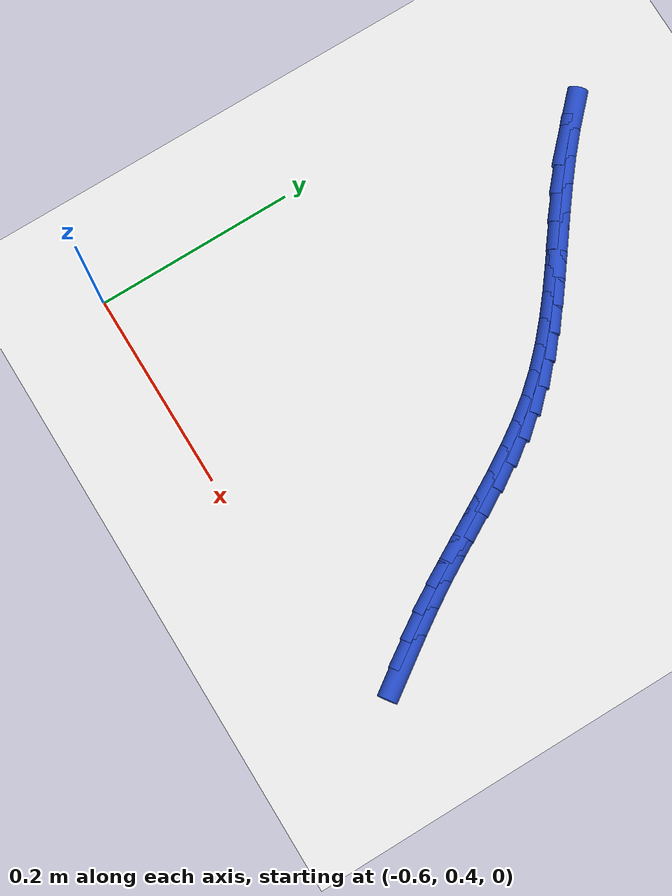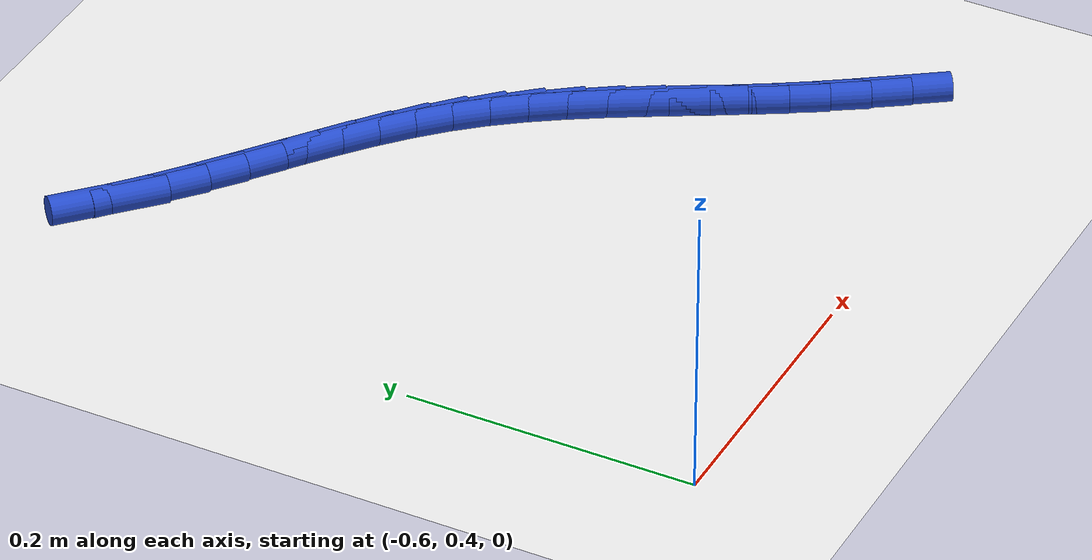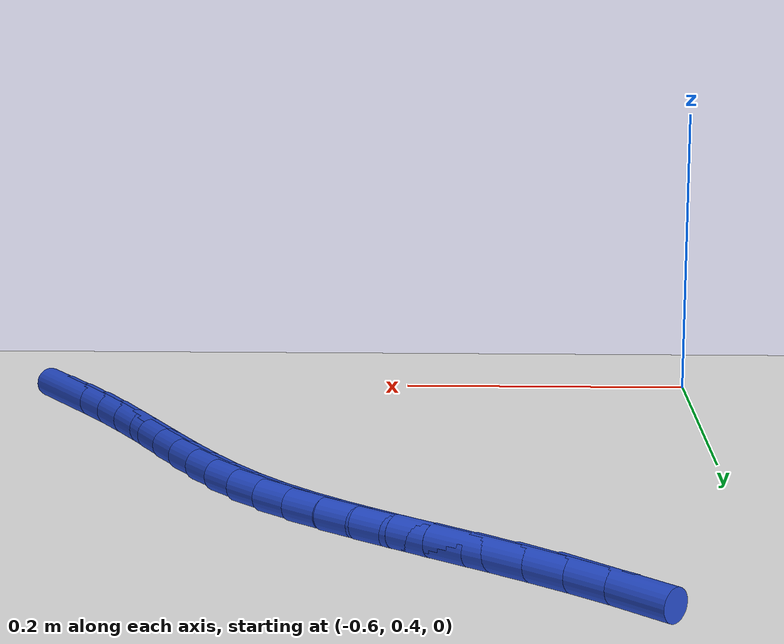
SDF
<sdf version="1.6">
 <world name="default">
  <model name="ground_plane">
   <static>1</static>
   <link name="link">
    <collision name="collision">
     <geometry><plane><normal>0 0 1</normal><size>100 100</size></plane></geometry>
     <surface><friction><ode><mu>100</mu><mu2>50</mu2></ode></friction></surface>
    </collision>
    <visual name="visual">
     <cast_shadows>0</cast_shadows>
     <geometry><plane><normal>0 0 1</normal><size>100 100</size></plane></geometry>
     <material>
      <script><uri>file://media/materials/scripts/gazebo.material</uri><name>Gazebo/WhiteGlow</name></script>
     </material>
    </visual>
   </link>
  </model>
  <model name="line">
   <link name="link_19">
    <pose>-0.1661801027227884 0.46604194951298944 0.01 0 1.57 -0.9609769665578496</pose>
    <collision name="collision">
     <geometry><cylinder><radius>0.01</radius><length>0.08</length></cylinder></geometry>
    </collision>
    <visual name="visual">
     <material>
      <script><name>Gazebo/Blue</name><uri>file://media/materials/scripts/gazebo.material</uri></script>
     </material>
     <geometry><cylinder><radius>0.01</radius><length>0.08</length></cylinder></geometry>
    </visual>
   </link>
   <link name="link_20">
    <pose>-0.18179409731500973 0.4883907568281688 0.01 0 1.57 -0.9820262279820207</pose>
    <collision name="collision">
     <geometry><cylinder><radius>0.01</radius><length>0.08</length></cylinder></geometry>
    </collision>
    <visual name="visual">
     <material>
      <script><name>Gazebo/Blue</name><uri>file://media/materials/scripts/gazebo.material</uri></script>
     </material>
     <geometry><cylinder><radius>0.01</radius><length>0.08</length></cylinder></geometry>
    </visual>
   </link>
   <link name="link_21">
    <pose>-0.19694212839886005 0.5110750622588759 0.01 0 1.57 -1.0109300378586217</pose>
    <collision name="collision">
     <geometry><cylinder><radius>0.01</radius><length>0.08</length></cylinder></geometry>
    </collision>
    <visual name="visual">
     <material>
      <script><name>Gazebo/Blue</name><uri>file://media/materials/scripts/gazebo.material</uri></script>
     </material>
     <geometry><cylinder><radius>0.01</radius><length>0.08</length></cylinder></geometry>
    </visual>
   </link>
   <link name="link_22">
    <pose>-0.2114299420428363 0.5341903500423052 0.01 0 1.57 -1.039145391755223</pose>
    <collision name="collision">
     <geometry><cylinder><radius>0.01</radius><length>0.08</length></cylinder></geometry>
    </collision>
    <visual name="visual">
     <material>
      <script><name>Gazebo/Blue</name><uri>file://media/materials/scripts/gazebo.material</uri></script>
     </material>
     <geometry><cylinder><radius>0.01</radius><length>0.08</length></cylinder></geometry>
    </visual>
   </link>
   <link name="link_23">
    <pose>-0.22525480229039502 0.5576965459083251 0.01 0 1.57 -1.0547436627425568</pose>
    <collision name="collision">
     <geometry><cylinder><radius>0.01</radius><length>0.08</length></cylinder></geometry>
    </collision>
    <visual name="visual">
     <material>
      <script><name>Gazebo/Blue</name><uri>file://media/materials/scripts/gazebo.material</uri></script>
     </material>
     <geometry><cylinder><radius>0.01</radius><length>0.08</length></cylinder></geometry>
    </visual>
   </link>
   <link name="link_24">
    <pose>-0.23868202464836102 0.581363845843327 0.01 0 1.57 -1.056841591952224</pose>
    <collision name="collision">
     <geometry><cylinder><radius>0.01</radius><length>0.08</length></cylinder></geometry>
    </collision>
    <visual name="visual">
     <material>
      <script><name>Gazebo/Blue</name><uri>file://media/materials/scripts/gazebo.material</uri></script>
     </material>
     <geometry><cylinder><radius>0.01</radius><length>0.08</length></cylinder></geometry>
    </visual>
   </link>
   <link name="link_25">
    <pose>-0.25199691686086373 0.604948295110525 0.01 0 1.57 -1.0452628420765173</pose>
    <collision name="collision">
     <geometry><cylinder><radius>0.01</radius><length>0.08</length></cylinder></geometry>
    </collision>
    <visual name="visual">
     <material>
      <script><name>Gazebo/Blue</name><uri>file://media/materials/scripts/gazebo.material</uri></script>
     </material>
     <geometry><cylinder><radius>0.01</radius><length>0.08</length></cylinder></geometry>
    </visual>
   </link>
   <link name="link_26">
    <pose>-0.2654847866720326 0.6282059389731328 0.01 0 1.57 -1.0196211803375106</pose>
    <collision name="collision">
     <geometry><cylinder><radius>0.01</radius><length>0.08</length></cylinder></geometry>
    </collision>
    <visual name="visual">
     <material>
      <script><name>Gazebo/Blue</name><uri>file://media/materials/scripts/gazebo.material</uri></script>
     </material>
     <geometry><cylinder><radius>0.01</radius><length>0.08</length></cylinder></geometry>
    </visual>
   </link>
   <link name="link_27">
    <pose>-0.2794309418259971 0.6508928226943647 0.01 0 1.57 -0.9793735186141798</pose>
    <collision name="collision">
     <geometry><cylinder><radius>0.01</radius><length>0.08</length></cylinder></geometry>
    </collision>
    <visual name="visual">
     <material>
      <script><name>Gazebo/Blue</name><uri>file://media/materials/scripts/gazebo.material</uri></script>
     </material>
     <geometry><cylinder><radius>0.01</radius><length>0.08</length></cylinder></geometry>
    </visual>
   </link>
   <link name="link_28">
    <pose>-0.2941206900668865 0.6727649915374343 0.01 0 1.57 -0.9239665071199855</pose>
    <collision name="collision">
     <geometry><cylinder><radius>0.01</radius><length>0.08</length></cylinder></geometry>
    </collision>
    <visual name="visual">
     <material>
      <script><name>Gazebo/Blue</name><uri>file://media/materials/scripts/gazebo.material</uri></script>
     </material>
     <geometry><cylinder><radius>0.01</radius><length>0.08</length></cylinder></geometry>
    </visual>
   </link>
   <link name="link_29">
    <pose>-0.3098393391388304 0.6935784907655561 0.01 0 1.57 -0.8539680803957829</pose>
    <collision name="collision">
     <geometry><cylinder><radius>0.01</radius><length>0.08</length></cylinder></geometry>
    </collision>
    <visual name="visual">
     <material>
      <script><name>Gazebo/Blue</name><uri>file://media/materials/scripts/gazebo.material</uri></script>
     </material>
     <geometry><cylinder><radius>0.01</radius><length>0.08</length></cylinder></geometry>
    </visual>
   </link>
   <link name="link_30">
    <pose>-0.3268565889247437 0.7131055129945613 0.01 0 1.57 -0.7843573897227736</pose>
    <collision name="collision">
     <geometry><cylinder><radius>0.01</radius><length>0.08</length></cylinder></geometry>
    </collision>
    <visual name="visual">
     <material>
      <script><name>Gazebo/Blue</name><uri>file://media/materials/scripts/gazebo.material</uri></script>
     </material>
     <geometry><cylinder><radius>0.01</radius><length>0.08</length></cylinder></geometry>
    </visual>
   </link>
   <link name="link_31">
    <pose>-0.3451793251737625 0.7313901492402318 0.01 0 1.57 -0.7281658685395936</pose>
    <collision name="collision">
     <geometry><cylinder><radius>0.01</radius><length>0.08</length></cylinder></geometry>
    </collision>
    <visual name="visual">
     <material>
      <script><name>Gazebo/Blue</name><uri>file://media/materials/scripts/gazebo.material</uri></script>
     </material>
     <geometry><cylinder><radius>0.01</radius><length>0.08</length></cylinder></geometry>
    </visual>
   </link>
   <link name="link_32">
    <pose>-0.3645960164219315 0.7487024574018947 0.01 0 1.57 -0.6861414759151395</pose>
    <collision name="collision">
     <geometry><cylinder><radius>0.01</radius><length>0.08</length></cylinder></geometry>
    </collision>
    <visual name="visual">
     <material>
      <script><name>Gazebo/Blue</name><uri>file://media/materials/scripts/gazebo.material</uri></script>
     </material>
     <geometry><cylinder><radius>0.01</radius><length>0.08</length></cylinder></geometry>
    </visual>
   </link>
   <link name="link_33">
    <pose>-0.3848884981430086 0.7653193577153742 0.01 0 1.57 -0.6581782373925901</pose>
    <collision name="collision">
     <geometry><cylinder><radius>0.01</radius><length>0.08</length></cylinder></geometry>
    </collision>
    <visual name="visual">
     <material>
      <script><name>Gazebo/Blue</name><uri>file://media/materials/scripts/gazebo.material</uri></script>
     </material>
     <geometry><cylinder><radius>0.01</radius><length>0.08</length></cylinder></geometry>
    </visual>
   </link>
   <link name="link_34">
    <pose>-0.40583860581075154 0.7815177704164963 0.01 0 1.57 -0.643939862634523</pose>
    <collision name="collision">
     <geometry><cylinder><radius>0.01</radius><length>0.08</length></cylinder></geometry>
    </collision>
    <visual name="visual">
     <material>
      <script><name>Gazebo/Blue</name><uri>file://media/materials/scripts/gazebo.material</uri></script>
     </material>
     <geometry><cylinder><radius>0.01</radius><length>0.08</length></cylinder></geometry>
    </visual>
   </link>
   <link name="link_35">
    <pose>-0.42722817489891823 0.7975746157410857 0.01 0 1.57 -0.6430285478457716</pose>
    <collision name="collision">
     <geometry><cylinder><radius>0.01</radius><length>0.08</length></cylinder></geometry>
    </collision>
    <visual name="visual">
     <material>
      <script><name>Gazebo/Blue</name><uri>file://media/materials/scripts/gazebo.material</uri></script>
     </material>
     <geometry><cylinder><radius>0.01</radius><length>0.08</length></cylinder></geometry>
    </visual>
   </link>
   <link name="link_36">
    <pose>-0.4488390408812666 0.8137668139249673 0.01 0 1.57 -0.6550651116794389</pose>
    <collision name="collision">
     <geometry><cylinder><radius>0.01</radius><length>0.08</length></cylinder></geometry>
    </collision>
    <visual name="visual">
     <material>
      <script><name>Gazebo/Blue</name><uri>file://media/materials/scripts/gazebo.material</uri></script>
     </material>
     <geometry><cylinder><radius>0.01</radius><length>0.08</length></cylinder></geometry>
    </visual>
   </link>
   <link name="link_37">
    <pose>-0.4704530392315542 0.8303712852039663 0.01 0 1.57 -0.6796932818834382</pose>
    <collision name="collision">
     <geometry><cylinder><radius>0.01</radius><length>0.08</length></cylinder></geometry>
    </collision>
    <visual name="visual">
     <material>
      <script><name>Gazebo/Blue</name><uri>file://media/materials/scripts/gazebo.material</uri></script>
     </material>
     <geometry><cylinder><radius>0.01</radius><length>0.08</length></cylinder></geometry>
    </visual>
   </link>
   <link name="link_38">
    <pose>-0.4918520054235393 0.847664949813908 0.01 0 1.57 -0.7165218541864354</pose>
    <collision name="collision">
     <geometry><cylinder><radius>0.01</radius><length>0.08</length></cylinder></geometry>
    </collision>
    <visual name="visual">
     <material>
      <script><name>Gazebo/Blue</name><uri>file://media/materials/scripts/gazebo.material</uri></script>
     </material>
     <geometry><cylinder><radius>0.01</radius><length>0.08</length></cylinder></geometry>
    </visual>
   </link>
   <link name="link_39">
    <pose>-0.5128177749309796 0.8659247279906175 0.01 0 1.57 -0.7637926570264485</pose>
    <collision name="collision">
     <geometry><cylinder><radius>0.01</radius><length>0.08</length></cylinder></geometry>
    </collision>
    <visual name="visual">
     <material>
      <script><name>Gazebo/Blue</name><uri>file://media/materials/scripts/gazebo.material</uri></script>
     </material>
     <geometry><cylinder><radius>0.01</radius><length>0.08</length></cylinder></geometry>
    </visual>
   </link>
  </model>
 </world>
</sdf>
